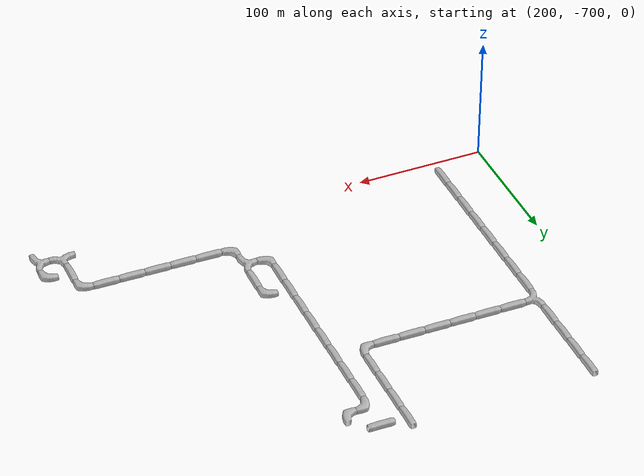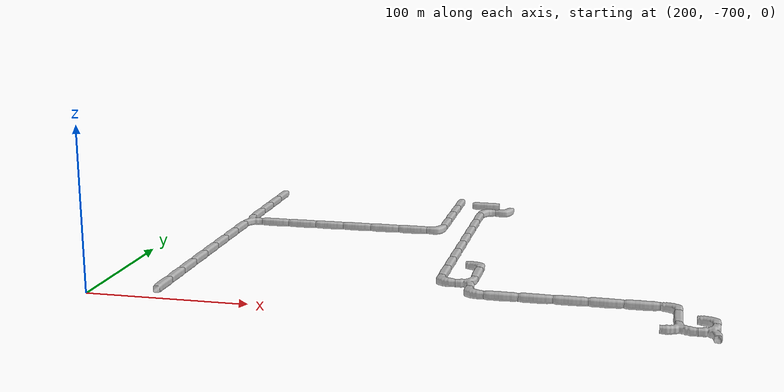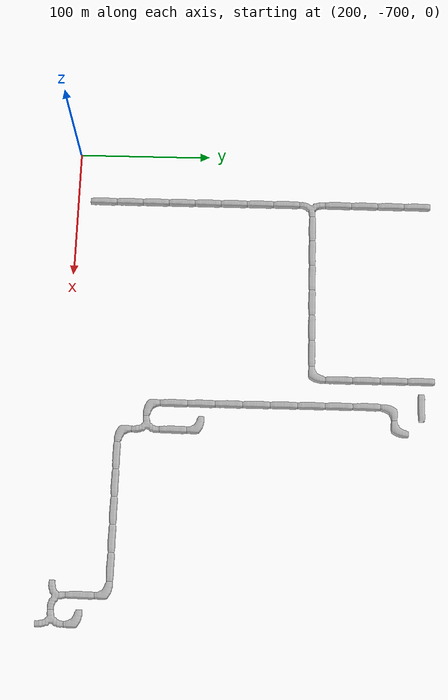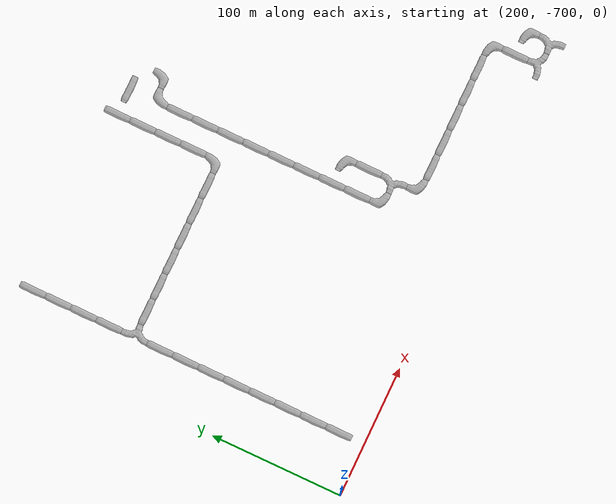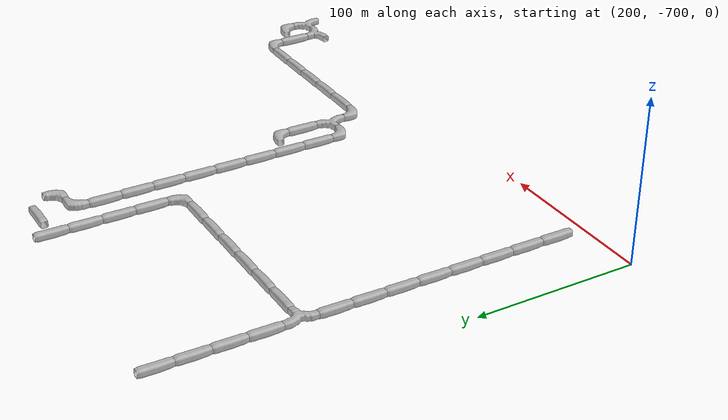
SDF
<sdf version="1.6">
 <world name="cave_8000_64">
  <include>
   <static>true</static>
   <name>cave_19_-22</name>
   <pose>380 -440 0 0 0 0.0</pose>
   <uri>model://cave_straight_20m</uri>
  </include>
  <include>
   <static>true</static>
   <name>cave_19_-23</name>
   <pose>380 -460 0 0 0 0.0</pose>
   <uri>model://cave_straight_20m</uri>
  </include>
  <include>
   <static>true</static>
   <name>cave_19_-24</name>
   <pose>380 -480 0 0 0 0.0</pose>
   <uri>model://cave_straight_20m</uri>
  </include>
  <include>
   <static>true</static>
   <name>cave_19_-25</name>
   <pose>380 -500 0 0 0 0.0</pose>
   <uri>model://cave_straight_20m</uri>
  </include>
  <include>
   <static>true</static>
   <name>cave_19_-26</name>
   <pose>380 -520 0 0 0 1.5707963267948966</pose>
   <uri>model://cave_L_20m</uri>
  </include>
  <include>
   <static>true</static>
   <name>cave_18_-26</name>
   <pose>360 -520 0 0 0 1.5707963267948966</pose>
   <uri>model://cave_straight_20m</uri>
  </include>
  <include>
   <static>true</static>
   <name>cave_17_-26</name>
   <pose>340 -520 0 0 0 1.5707963267948966</pose>
   <uri>model://cave_straight_20m</uri>
  </include>
  <include>
   <static>true</static>
   <name>cave_16_-26</name>
   <pose>320 -520 0 0 0 1.5707963267948966</pose>
   <uri>model://cave_straight_20m</uri>
  </include>
  <include>
   <static>true</static>
   <name>cave_15_-26</name>
   <pose>300 -520 0 0 0 1.5707963267948966</pose>
   <uri>model://cave_straight_20m</uri>
  </include>
  <include>
   <static>true</static>
   <name>cave_14_-26</name>
   <pose>280 -520 0 0 0 1.5707963267948966</pose>
   <uri>model://cave_straight_20m</uri>
  </include>
  <include>
   <static>true</static>
   <name>cave_13_-26</name>
   <pose>260 -520 0 0 0 1.5707963267948966</pose>
   <uri>model://cave_straight_20m</uri>
  </include>
  <include>
   <static>true</static>
   <name>cave_12_-26</name>
   <pose>240 -520 0 0 0 -1.5707963267948966</pose>
   <uri>model://cave_3way_20m</uri>
  </include>
  <include>
   <static>true</static>
   <name>cave_12_-27</name>
   <pose>240 -540 0 0 0 0.0</pose>
   <uri>model://cave_straight_20m</uri>
  </include>
  <include>
   <static>true</static>
   <name>cave_12_-28</name>
   <pose>240 -560 0 0 0 0.0</pose>
   <uri>model://cave_straight_20m</uri>
  </include>
  <include>
   <static>true</static>
   <name>cave_12_-29</name>
   <pose>240 -580 0 0 0 0.0</pose>
   <uri>model://cave_straight_20m</uri>
  </include>
  <include>
   <static>true</static>
   <name>cave_12_-30</name>
   <pose>240 -600 0 0 0 0.0</pose>
   <uri>model://cave_straight_20m</uri>
  </include>
  <include>
   <static>true</static>
   <name>cave_12_-31</name>
   <pose>240 -620 0 0 0 0.0</pose>
   <uri>model://cave_straight_20m</uri>
  </include>
  <include>
   <static>true</static>
   <name>cave_12_-32</name>
   <pose>240 -640 0 0 0 0.0</pose>
   <uri>model://cave_straight_20m</uri>
  </include>
  <include>
   <static>true</static>
   <name>cave_12_-33</name>
   <pose>240 -660 0 0 0 0.0</pose>
   <uri>model://cave_straight_20m</uri>
  </include>
  <include>
   <static>true</static>
   <name>cave_12_-34</name>
   <pose>240 -680 0 0 0 0.0</pose>
   <uri>model://cave_straight_20m</uri>
  </include>
  <include>
   <static>true</static>
   <name>cave_27_-35</name>
   <pose>540 -700 0 0 0 0.0</pose>
   <uri>model://cave_3way_20m</uri>
  </include>
  <include>
   <static>true</static>
   <name>cave_28_-35</name>
   <pose>560 -700 0 0 0 1.5707963267948966</pose>
   <uri>model://cave_3way_20m</uri>
  </include>
  <include>
   <static>true</static>
   <name>cave_28_-34</name>
   <pose>560 -680 0 0 0 3.141592653589793</pose>
   <uri>model://cave_L_20m</uri>
  </include>
  <include>
   <static>true</static>
   <name>cave_27_-34</name>
   <pose>540 -680 0 0 0 0.0</pose>
   <uri>model://cave_straight_20m</uri>
  </include>
  <include>
   <static>true</static>
   <name>cave_27_-33</name>
   <pose>540 -660 0 0 0 3.141592653589793</pose>
   <uri>model://cave_L_20m</uri>
  </include>
  <include>
   <static>true</static>
   <name>cave_26_-33</name>
   <pose>520 -660 0 0 0 1.5707963267948966</pose>
   <uri>model://cave_straight_20m</uri>
  </include>
  <include>
   <static>true</static>
   <name>cave_25_-33</name>
   <pose>500 -660 0 0 0 1.5707963267948966</pose>
   <uri>model://cave_straight_20m</uri>
  </include>
  <include>
   <static>true</static>
   <name>cave_24_-33</name>
   <pose>480 -660 0 0 0 1.5707963267948966</pose>
   <uri>model://cave_straight_20m</uri>
  </include>
  <include>
   <static>true</static>
   <name>cave_23_-33</name>
   <pose>460 -660 0 0 0 1.5707963267948966</pose>
   <uri>model://cave_straight_20m</uri>
  </include>
  <include>
   <static>true</static>
   <name>cave_22_-33</name>
   <pose>440 -660 0 0 0 1.5707963267948966</pose>
   <uri>model://cave_straight_20m</uri>
  </include>
  <include>
   <static>true</static>
   <name>cave_21_-33</name>
   <pose>420 -660 0 0 0 0.0</pose>
   <uri>model://cave_L_20m</uri>
  </include>
  <include>
   <static>true</static>
   <name>cave_21_-32</name>
   <pose>420 -640 0 0 0 1.5707963267948966</pose>
   <uri>model://cave_3way_20m</uri>
  </include>
  <include>
   <static>true</static>
   <name>cave_20_-32</name>
   <pose>400 -640 0 0 0 0.0</pose>
   <uri>model://cave_L_20m</uri>
  </include>
  <include>
   <static>true</static>
   <name>cave_20_-31</name>
   <pose>400 -620 0 0 0 0.0</pose>
   <uri>model://cave_straight_20m</uri>
  </include>
  <include>
   <static>true</static>
   <name>cave_20_-30</name>
   <pose>400 -600 0 0 0 0.0</pose>
   <uri>model://cave_straight_20m</uri>
  </include>
  <include>
   <static>true</static>
   <name>cave_20_-29</name>
   <pose>400 -580 0 0 0 0.0</pose>
   <uri>model://cave_straight_20m</uri>
  </include>
  <include>
   <static>true</static>
   <name>cave_20_-28</name>
   <pose>400 -560 0 0 0 0.0</pose>
   <uri>model://cave_straight_20m</uri>
  </include>
  <include>
   <static>true</static>
   <name>cave_20_-27</name>
   <pose>400 -540 0 0 0 0.0</pose>
   <uri>model://cave_straight_20m</uri>
  </include>
  <include>
   <static>true</static>
   <name>cave_20_-26</name>
   <pose>400 -520 0 0 0 0.0</pose>
   <uri>model://cave_straight_20m</uri>
  </include>
  <include>
   <static>true</static>
   <name>cave_20_-25</name>
   <pose>400 -500 0 0 0 0.0</pose>
   <uri>model://cave_straight_20m</uri>
  </include>
  <include>
   <static>true</static>
   <name>cave_20_-24</name>
   <pose>400 -480 0 0 0 0.0</pose>
   <uri>model://cave_straight_20m</uri>
  </include>
  <include>
   <static>true</static>
   <name>cave_20_-23</name>
   <pose>400 -460 0 0 0 -1.5707963267948966</pose>
   <uri>model://cave_L_20m</uri>
  </include>
  <include>
   <static>true</static>
   <name>cave_21_-23</name>
   <pose>420 -460 0 0 0 1.5707963267948966</pose>
   <uri>model://cave_L_20m</uri>
  </include>
  <include>
   <static>true</static>
   <name>cave_20_-22</name>
   <pose>400 -440 0 0 0 1.5707963267948966</pose>
   <uri>model://cave_straight_20m</uri>
  </include>
  <include>
   <static>true</static>
   <name>cave_21_-31</name>
   <pose>420 -620 0 0 0 0.0</pose>
   <uri>model://cave_straight_20m</uri>
  </include>
  <include>
   <static>true</static>
   <name>cave_21_-30</name>
   <pose>420 -600 0 0 0 3.141592653589793</pose>
   <uri>model://cave_L_20m</uri>
  </include>
  <include>
   <static>true</static>
   <name>cave_12_-25</name>
   <pose>240 -500 0 0 0 0.0</pose>
   <uri>model://cave_straight_20m</uri>
  </include>
  <include>
   <static>true</static>
   <name>cave_12_-24</name>
   <pose>240 -480 0 0 0 0.0</pose>
   <uri>model://cave_straight_20m</uri>
  </include>
  <include>
   <static>true</static>
   <name>cave_12_-23</name>
   <pose>240 -460 0 0 0 0.0</pose>
   <uri>model://cave_straight_20m</uri>
  </include>
  <include>
   <static>true</static>
   <name>cave_12_-22</name>
   <pose>240 -440 0 0 0 0.0</pose>
   <uri>model://cave_straight_20m</uri>
  </include>
 </world>
</sdf>
